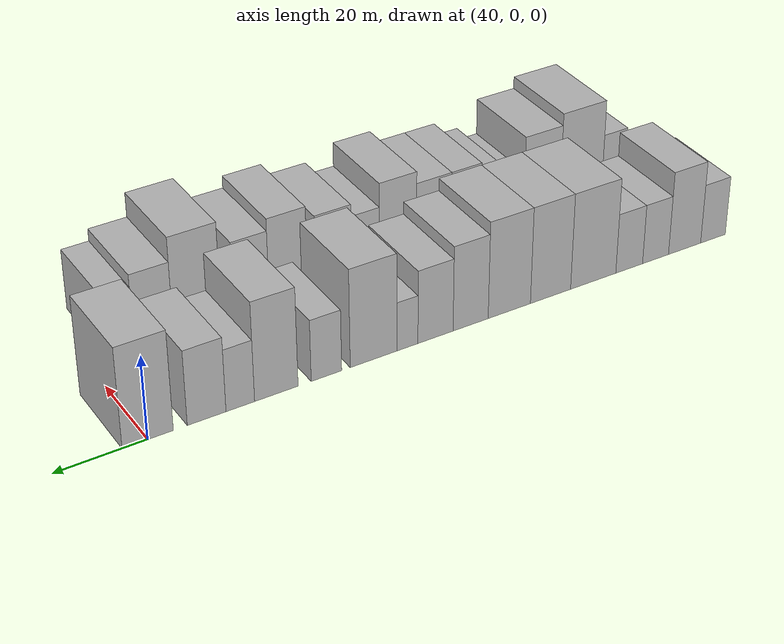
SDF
<sdf version="1.6">
 <world name="default">
  <model name="building_15">
   <static>1</static>
   <pose>50.0000 -138.1473 0 0.000000 0.000000 0.000000</pose>
   <link name="link">
    <pose>0 0 7.50 0 0 0</pose>
    <collision name="collision"><geometry><box><size>20.0000 6.9170 15.0000</size></box></geometry></collision>
    <visual name="visual">
     <cast_shadows>0</cast_shadows>
     <geometry><box><size>20.0000 6.9170 15.0000</size></box></geometry>
     <material>
      <script>
       <uri>model://HANNAS_wall/materials/scripts</uri>
       <uri>model://HANNAS_wall/materials/textures</uri>
       <name>vrc/HANNAS_wall</name>
      </script>
     </material>
    </visual>
   </link>
  </model>
  <model name="building_16">
   <static>1</static>
   <pose>50.0000 -130.2422 0 0.000000 0.000000 0.000000</pose>
   <link name="link">
    <pose>0 0 10.50 0 0 0</pose>
    <collision name="collision"><geometry><box><size>20.0000 8.8931 21.0000</size></box></geometry></collision>
    <visual name="visual">
     <cast_shadows>0</cast_shadows>
     <geometry><box><size>20.0000 8.8931 21.0000</size></box></geometry>
     <material>
      <script>
       <uri>model://HANNAS_wall/materials/scripts</uri>
       <uri>model://HANNAS_wall/materials/textures</uri>
       <name>vrc/HANNAS_wall</name>
      </script>
     </material>
    </visual>
   </link>
  </model>
  <model name="building_17">
   <static>1</static>
   <pose>50.0000 -122.2671 0 0.000000 0.000000 0.000000</pose>
   <link name="link">
    <pose>0 0 7.50 0 0 0</pose>
    <collision name="collision"><geometry><box><size>20.0000 7.0571 15.0000</size></box></geometry></collision>
    <visual name="visual">
     <cast_shadows>0</cast_shadows>
     <geometry><box><size>20.0000 7.0571 15.0000</size></box></geometry>
     <material>
      <script>
       <uri>model://HANNAS_wall/materials/scripts</uri>
       <uri>model://HANNAS_wall/materials/textures</uri>
       <name>vrc/HANNAS_wall</name>
      </script>
     </material>
    </visual>
   </link>
  </model>
  <model name="building_18">
   <static>1</static>
   <pose>50.0000 -115.1416 0 0.000000 0.000000 0.000000</pose>
   <link name="link">
    <pose>0 0 7.50 0 0 0</pose>
    <collision name="collision"><geometry><box><size>20.0000 7.1939 15.0000</size></box></geometry></collision>
    <visual name="visual">
     <cast_shadows>0</cast_shadows>
     <geometry><box><size>20.0000 7.1939 15.0000</size></box></geometry>
     <material>
      <script>
       <uri>model://HANNAS_wall/materials/scripts</uri>
       <uri>model://HANNAS_wall/materials/textures</uri>
       <name>vrc/HANNAS_wall</name>
      </script>
     </material>
    </visual>
   </link>
  </model>
  <model name="building_19">
   <static>1</static>
   <pose>50.0000 -105.5763 0 0.000000 0.000000 0.000000</pose>
   <link name="link">
    <pose>0 0 12.00 0 0 0</pose>
    <collision name="collision"><geometry><box><size>20.0000 11.9367 24.0000</size></box></geometry></collision>
    <visual name="visual">
     <cast_shadows>0</cast_shadows>
     <geometry><box><size>20.0000 11.9367 24.0000</size></box></geometry>
     <material>
      <script>
       <uri>model://HANNAS_wall/materials/scripts</uri>
       <uri>model://HANNAS_wall/materials/textures</uri>
       <name>vrc/HANNAS_wall</name>
      </script>
     </material>
    </visual>
   </link>
  </model>
  <model name="building_20">
   <static>1</static>
   <pose>50.0000 -94.4235 0 0.000000 0.000000 0.000000</pose>
   <link name="link">
    <pose>0 0 12.00 0 0 0</pose>
    <collision name="collision"><geometry><box><size>20.0000 10.3688 24.0000</size></box></geometry></collision>
    <visual name="visual">
     <cast_shadows>0</cast_shadows>
     <geometry><box><size>20.0000 10.3688 24.0000</size></box></geometry>
     <material>
      <script>
       <uri>model://HANNAS_wall/materials/scripts</uri>
       <uri>model://HANNAS_wall/materials/textures</uri>
       <name>vrc/HANNAS_wall</name>
      </script>
     </material>
    </visual>
   </link>
  </model>
  <model name="building_21">
   <static>1</static>
   <pose>50.0000 -83.8943 0 0.000000 0.000000 0.000000</pose>
   <link name="link">
    <pose>0 0 12.00 0 0 0</pose>
    <collision name="collision"><geometry><box><size>20.0000 10.6895 24.0000</size></box></geometry></collision>
    <visual name="visual">
     <cast_shadows>0</cast_shadows>
     <geometry><box><size>20.0000 10.6895 24.0000</size></box></geometry>
     <material>
      <script>
       <uri>model://HANNAS_wall/materials/scripts</uri>
       <uri>model://HANNAS_wall/materials/textures</uri>
       <name>vrc/HANNAS_wall</name>
      </script>
     </material>
    </visual>
   </link>
  </model>
  <model name="building_22">
   <static>1</static>
   <pose>50.0000 -74.1947 0 0.000000 0.000000 0.000000</pose>
   <link name="link">
    <pose>0 0 10.50 0 0 0</pose>
    <collision name="collision"><geometry><box><size>20.0000 8.7096 21.0000</size></box></geometry></collision>
    <visual name="visual">
     <cast_shadows>0</cast_shadows>
     <geometry><box><size>20.0000 8.7096 21.0000</size></box></geometry>
     <material>
      <script>
       <uri>model://HANNAS_wall/materials/scripts</uri>
       <uri>model://HANNAS_wall/materials/textures</uri>
       <name>vrc/HANNAS_wall</name>
      </script>
     </material>
    </visual>
   </link>
  </model>
  <model name="building_23">
   <static>1</static>
   <pose>50.0000 -65.5547 0 0.000000 0.000000 0.000000</pose>
   <link name="link">
    <pose>0 0 9.00 0 0 0</pose>
    <collision name="collision"><geometry><box><size>20.0000 8.5704 18.0000</size></box></geometry></collision>
    <visual name="visual">
     <cast_shadows>0</cast_shadows>
     <geometry><box><size>20.0000 8.5704 18.0000</size></box></geometry>
     <material>
      <script>
       <uri>model://HANNAS_wall/materials/scripts</uri>
       <uri>model://HANNAS_wall/materials/textures</uri>
       <name>vrc/HANNAS_wall</name>
      </script>
     </material>
    </visual>
   </link>
  </model>
  <model name="building_24">
   <static>1</static>
   <pose>50.0000 -58.7450 0 0.000000 0.000000 0.000000</pose>
   <link name="link">
    <pose>0 0 6.00 0 0 0</pose>
    <collision name="collision"><geometry><box><size>20.0000 5.0491 12.0000</size></box></geometry></collision>
    <visual name="visual">
     <cast_shadows>0</cast_shadows>
     <geometry><box><size>20.0000 5.0491 12.0000</size></box></geometry>
     <material>
      <script>
       <uri>model://HANNAS_wall/materials/scripts</uri>
       <uri>model://HANNAS_wall/materials/textures</uri>
       <name>vrc/HANNAS_wall</name>
      </script>
     </material>
    </visual>
   </link>
  </model>
  <model name="building_25">
   <static>1</static>
   <pose>50.0000 -50.6894 0 0.000000 0.000000 0.000000</pose>
   <link name="link">
    <pose>0 0 12.00 0 0 0</pose>
    <collision name="collision"><geometry><box><size>20.0000 11.0620 24.0000</size></box></geometry></collision>
    <visual name="visual">
     <cast_shadows>0</cast_shadows>
     <geometry><box><size>20.0000 11.0620 24.0000</size></box></geometry>
     <material>
      <script>
       <uri>model://HANNAS_wall/materials/scripts</uri>
       <uri>model://HANNAS_wall/materials/textures</uri>
       <name>vrc/HANNAS_wall</name>
      </script>
     </material>
    </visual>
   </link>
  </model>
  <model name="building_26">
   <static>1</static>
   <pose>50.0000 -39.6326 0 0.000000 0.000000 0.000000</pose>
   <link name="link">
    <pose>0 0 7.50 0 0 0</pose>
    <collision name="collision"><geometry><box><size>20.0000 7.0516 15.0000</size></box></geometry></collision>
    <visual name="visual">
     <cast_shadows>0</cast_shadows>
     <geometry><box><size>20.0000 7.0516 15.0000</size></box></geometry>
     <material>
      <script>
       <uri>model://HANNAS_wall/materials/scripts</uri>
       <uri>model://HANNAS_wall/materials/textures</uri>
       <name>vrc/HANNAS_wall</name>
      </script>
     </material>
    </visual>
   </link>
  </model>
  <model name="building_27">
   <static>1</static>
   <pose>50.0000 -28.1951 0 0.000000 0.000000 0.000000</pose>
   <link name="link">
    <pose>0 0 12.00 0 0 0</pose>
    <collision name="collision"><geometry><box><size>20.0000 9.8236 24.0000</size></box></geometry></collision>
    <visual name="visual">
     <cast_shadows>0</cast_shadows>
     <geometry><box><size>20.0000 9.8236 24.0000</size></box></geometry>
     <material>
      <script>
       <uri>model://HANNAS_wall/materials/scripts</uri>
       <uri>model://HANNAS_wall/materials/textures</uri>
       <name>vrc/HANNAS_wall</name>
      </script>
     </material>
    </visual>
   </link>
  </model>
  <model name="building_28">
   <static>1</static>
   <pose>50.0000 -20.1003 0 0.000000 0.000000 0.000000</pose>
   <link name="link">
    <pose>0 0 7.50 0 0 0</pose>
    <collision name="collision"><geometry><box><size>20.0000 6.3659 15.0000</size></box></geometry></collision>
    <visual name="visual">
     <cast_shadows>0</cast_shadows>
     <geometry><box><size>20.0000 6.3659 15.0000</size></box></geometry>
     <material>
      <script>
       <uri>model://HANNAS_wall/materials/scripts</uri>
       <uri>model://HANNAS_wall/materials/textures</uri>
       <name>vrc/HANNAS_wall</name>
      </script>
     </material>
    </visual>
   </link>
  </model>
  <model name="building_29">
   <static>1</static>
   <pose>50.0000 -12.6781 0 0.000000 0.000000 0.000000</pose>
   <link name="link">
    <pose>0 0 9.00 0 0 0</pose>
    <collision name="collision"><geometry><box><size>20.0000 8.4785 18.0000</size></box></geometry></collision>
    <visual name="visual">
     <cast_shadows>0</cast_shadows>
     <geometry><box><size>20.0000 8.4785 18.0000</size></box></geometry>
     <material>
      <script>
       <uri>model://HANNAS_wall/materials/scripts</uri>
       <uri>model://HANNAS_wall/materials/textures</uri>
       <name>vrc/HANNAS_wall</name>
      </script>
     </material>
    </visual>
   </link>
  </model>
  <model name="building_30">
   <static>1</static>
   <pose>50.0000 0.0246 0 0.000000 0.000000 0.000000</pose>
   <link name="link">
    <pose>0 0 12.00 0 0 0</pose>
    <collision name="collision"><geometry><box><size>20.0000 10.9269 24.0000</size></box></geometry></collision>
    <visual name="visual">
     <cast_shadows>0</cast_shadows>
     <geometry><box><size>20.0000 10.9269 24.0000</size></box></geometry>
     <material>
      <script>
       <uri>model://HANNAS_wall/materials/scripts</uri>
       <uri>model://HANNAS_wall/materials/textures</uri>
       <name>vrc/HANNAS_wall</name>
      </script>
     </material>
    </visual>
   </link>
  </model>
  <model name="building_78">
   <static>1</static>
   <pose>79.0000 -131.7456 0 0.000000 0.000000 0.000000</pose>
   <link name="link">
    <pose>0 0 7.50 0 0 0</pose>
    <collision name="collision"><geometry><box><size>20.0000 6.5158 15.0000</size></box></geometry></collision>
    <visual name="visual">
     <cast_shadows>0</cast_shadows>
     <geometry><box><size>20.0000 6.5158 15.0000</size></box></geometry>
     <material>
      <script>
       <uri>model://HANNAS_wall/materials/scripts</uri>
       <uri>model://HANNAS_wall/materials/textures</uri>
       <name>vrc/HANNAS_wall</name>
      </script>
     </material>
    </visual>
   </link>
  </model>
  <model name="building_79">
   <static>1</static>
   <pose>79.0000 -122.6422 0 0.000000 0.000000 0.000000</pose>
   <link name="link">
    <pose>0 0 12.00 0 0 0</pose>
    <collision name="collision"><geometry><box><size>20.0000 11.6911 24.0000</size></box></geometry></collision>
    <visual name="visual">
     <cast_shadows>0</cast_shadows>
     <geometry><box><size>20.0000 11.6911 24.0000</size></box></geometry>
     <material>
      <script>
       <uri>model://HANNAS_wall/materials/scripts</uri>
       <uri>model://HANNAS_wall/materials/textures</uri>
       <name>vrc/HANNAS_wall</name>
      </script>
     </material>
    </visual>
   </link>
  </model>
  <model name="building_80">
   <static>1</static>
   <pose>79.0000 -111.8338 0 0.000000 0.000000 0.000000</pose>
   <link name="link">
    <pose>0 0 10.50 0 0 0</pose>
    <collision name="collision"><geometry><box><size>20.0000 9.9256 21.0000</size></box></geometry></collision>
    <visual name="visual">
     <cast_shadows>0</cast_shadows>
     <geometry><box><size>20.0000 9.9256 21.0000</size></box></geometry>
     <material>
      <script>
       <uri>model://HANNAS_wall/materials/scripts</uri>
       <uri>model://HANNAS_wall/materials/textures</uri>
       <name>vrc/HANNAS_wall</name>
      </script>
     </material>
    </visual>
   </link>
  </model>
  <model name="building_81">
   <static>1</static>
   <pose>79.0000 -104.1825 0 0.000000 0.000000 0.000000</pose>
   <link name="link">
    <pose>0 0 6.00 0 0 0</pose>
    <collision name="collision"><geometry><box><size>20.0000 5.3770 12.0000</size></box></geometry></collision>
    <visual name="visual">
     <cast_shadows>0</cast_shadows>
     <geometry><box><size>20.0000 5.3770 12.0000</size></box></geometry>
     <material>
      <script>
       <uri>model://HANNAS_wall/materials/scripts</uri>
       <uri>model://HANNAS_wall/materials/textures</uri>
       <name>vrc/HANNAS_wall</name>
      </script>
     </material>
    </visual>
   </link>
  </model>
  <model name="building_82">
   <static>1</static>
   <pose>79.0000 -98.4220 0 0.000000 0.000000 0.000000</pose>
   <link name="link">
    <pose>0 0 7.50 0 0 0</pose>
    <collision name="collision"><geometry><box><size>20.0000 6.1439 15.0000</size></box></geometry></collision>
    <visual name="visual">
     <cast_shadows>0</cast_shadows>
     <geometry><box><size>20.0000 6.1439 15.0000</size></box></geometry>
     <material>
      <script>
       <uri>model://HANNAS_wall/materials/scripts</uri>
       <uri>model://HANNAS_wall/materials/textures</uri>
       <name>vrc/HANNAS_wall</name>
      </script>
     </material>
    </visual>
   </link>
  </model>
  <model name="building_83">
   <static>1</static>
   <pose>79.0000 -91.4619 0 0.000000 0.000000 0.000000</pose>
   <link name="link">
    <pose>0 0 9.00 0 0 0</pose>
    <collision name="collision"><geometry><box><size>20.0000 7.7763 18.0000</size></box></geometry></collision>
    <visual name="visual">
     <cast_shadows>0</cast_shadows>
     <geometry><box><size>20.0000 7.7763 18.0000</size></box></geometry>
     <material>
      <script>
       <uri>model://HANNAS_wall/materials/scripts</uri>
       <uri>model://HANNAS_wall/materials/textures</uri>
       <name>vrc/HANNAS_wall</name>
      </script>
     </material>
    </visual>
   </link>
  </model>
  <model name="building_84">
   <static>1</static>
   <pose>79.0000 -83.0889 0 0.000000 0.000000 0.000000</pose>
   <link name="link">
    <pose>0 0 9.00 0 0 0</pose>
    <collision name="collision"><geometry><box><size>20.0000 8.9697 18.0000</size></box></geometry></collision>
    <visual name="visual">
     <cast_shadows>0</cast_shadows>
     <geometry><box><size>20.0000 8.9697 18.0000</size></box></geometry>
     <material>
      <script>
       <uri>model://HANNAS_wall/materials/scripts</uri>
       <uri>model://HANNAS_wall/materials/textures</uri>
       <name>vrc/HANNAS_wall</name>
      </script>
     </material>
    </visual>
   </link>
  </model>
  <model name="building_85">
   <static>1</static>
   <pose>79.0000 -73.9062 0 0.000000 0.000000 0.000000</pose>
   <link name="link">
    <pose>0 0 10.50 0 0 0</pose>
    <collision name="collision"><geometry><box><size>20.0000 9.3957 21.0000</size></box></geometry></collision>
    <visual name="visual">
     <cast_shadows>0</cast_shadows>
     <geometry><box><size>20.0000 9.3957 21.0000</size></box></geometry>
     <material>
      <script>
       <uri>model://HANNAS_wall/materials/scripts</uri>
       <uri>model://HANNAS_wall/materials/textures</uri>
       <name>vrc/HANNAS_wall</name>
      </script>
     </material>
    </visual>
   </link>
  </model>
  <model name="building_86">
   <static>1</static>
   <pose>79.0000 -65.7011 0 0.000000 0.000000 0.000000</pose>
   <link name="link">
    <pose>0 0 7.50 0 0 0</pose>
    <collision name="collision"><geometry><box><size>20.0000 7.0146 15.0000</size></box></geometry></collision>
    <visual name="visual">
     <cast_shadows>0</cast_shadows>
     <geometry><box><size>20.0000 7.0146 15.0000</size></box></geometry>
     <material>
      <script>
       <uri>model://HANNAS_wall/materials/scripts</uri>
       <uri>model://HANNAS_wall/materials/textures</uri>
       <name>vrc/HANNAS_wall</name>
      </script>
     </material>
    </visual>
   </link>
  </model>
  <model name="building_87">
   <static>1</static>
   <pose>79.0000 -57.7352 0 0.000000 0.000000 0.000000</pose>
   <link name="link">
    <pose>0 0 9.00 0 0 0</pose>
    <collision name="collision"><geometry><box><size>20.0000 8.9172 18.0000</size></box></geometry></collision>
    <visual name="visual">
     <cast_shadows>0</cast_shadows>
     <geometry><box><size>20.0000 8.9172 18.0000</size></box></geometry>
     <material>
      <script>
       <uri>model://HANNAS_wall/materials/scripts</uri>
       <uri>model://HANNAS_wall/materials/textures</uri>
       <name>vrc/HANNAS_wall</name>
      </script>
     </material>
    </visual>
   </link>
  </model>
  <model name="building_88">
   <static>1</static>
   <pose>79.0000 -46.6405 0 0.000000 0.000000 0.000000</pose>
   <link name="link">
    <pose>0 0 10.50 0 0 0</pose>
    <collision name="collision"><geometry><box><size>20.0000 9.2721 21.0000</size></box></geometry></collision>
    <visual name="visual">
     <cast_shadows>0</cast_shadows>
     <geometry><box><size>20.0000 9.2721 21.0000</size></box></geometry>
     <material>
      <script>
       <uri>model://HANNAS_wall/materials/scripts</uri>
       <uri>model://HANNAS_wall/materials/textures</uri>
       <name>vrc/HANNAS_wall</name>
      </script>
     </material>
    </visual>
   </link>
  </model>
  <model name="building_89">
   <static>1</static>
   <pose>79.0000 -37.7856 0 0.000000 0.000000 0.000000</pose>
   <link name="link">
    <pose>0 0 9.00 0 0 0</pose>
    <collision name="collision"><geometry><box><size>20.0000 8.4377 18.0000</size></box></geometry></collision>
    <visual name="visual">
     <cast_shadows>0</cast_shadows>
     <geometry><box><size>20.0000 8.4377 18.0000</size></box></geometry>
     <material>
      <script>
       <uri>model://HANNAS_wall/materials/scripts</uri>
       <uri>model://HANNAS_wall/materials/textures</uri>
       <name>vrc/HANNAS_wall</name>
      </script>
     </material>
    </visual>
   </link>
  </model>
  <model name="building_90">
   <static>1</static>
   <pose>79.0000 -25.0192 0 0.000000 0.000000 0.000000</pose>
   <link name="link">
    <pose>0 0 12.00 0 0 0</pose>
    <collision name="collision"><geometry><box><size>20.0000 11.0951 24.0000</size></box></geometry></collision>
    <visual name="visual">
     <cast_shadows>0</cast_shadows>
     <geometry><box><size>20.0000 11.0951 24.0000</size></box></geometry>
     <material>
      <script>
       <uri>model://HANNAS_wall/materials/scripts</uri>
       <uri>model://HANNAS_wall/materials/textures</uri>
       <name>vrc/HANNAS_wall</name>
      </script>
     </material>
    </visual>
   </link>
  </model>
  <model name="building_91">
   <static>1</static>
   <pose>79.0000 -15.0174 0 0.000000 0.000000 0.000000</pose>
   <link name="link">
    <pose>0 0 9.00 0 0 0</pose>
    <collision name="collision"><geometry><box><size>20.0000 8.9084 18.0000</size></box></geometry></collision>
    <visual name="visual">
     <cast_shadows>0</cast_shadows>
     <geometry><box><size>20.0000 8.9084 18.0000</size></box></geometry>
     <material>
      <script>
       <uri>model://HANNAS_wall/materials/scripts</uri>
       <uri>model://HANNAS_wall/materials/textures</uri>
       <name>vrc/HANNAS_wall</name>
      </script>
     </material>
    </visual>
   </link>
  </model>
  <model name="building_92">
   <static>1</static>
   <pose>79.0000 -7.3787 0 0.000000 0.000000 0.000000</pose>
   <link name="link">
    <pose>0 0 7.50 0 0 0</pose>
    <collision name="collision"><geometry><box><size>20.0000 6.3689 15.0000</size></box></geometry></collision>
    <visual name="visual">
     <cast_shadows>0</cast_shadows>
     <geometry><box><size>20.0000 6.3689 15.0000</size></box></geometry>
     <material>
      <script>
       <uri>model://HANNAS_wall/materials/scripts</uri>
       <uri>model://HANNAS_wall/materials/textures</uri>
       <name>vrc/HANNAS_wall</name>
      </script>
     </material>
    </visual>
   </link>
  </model>
 </world>
</sdf>
